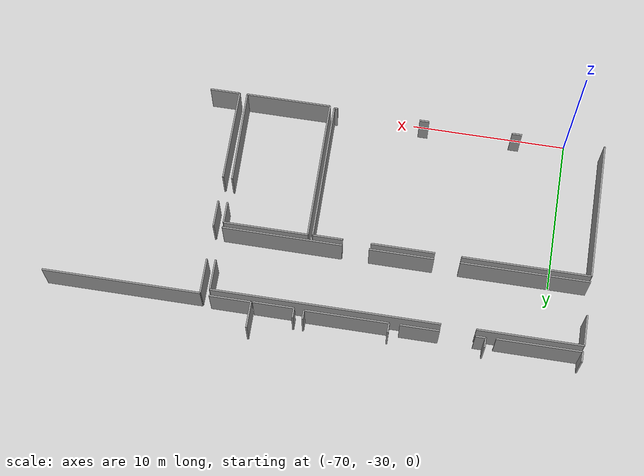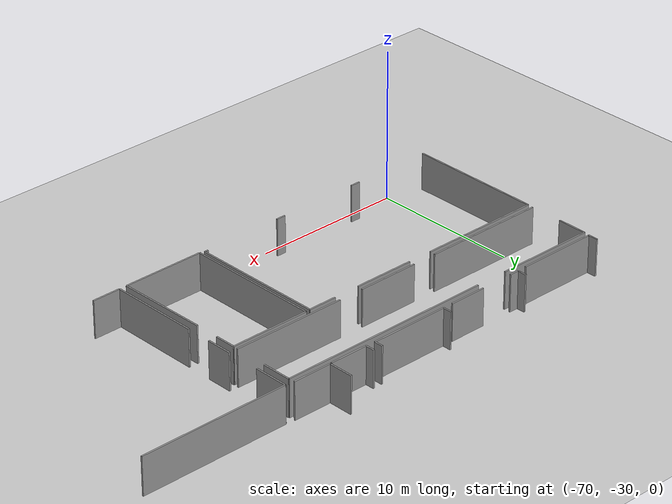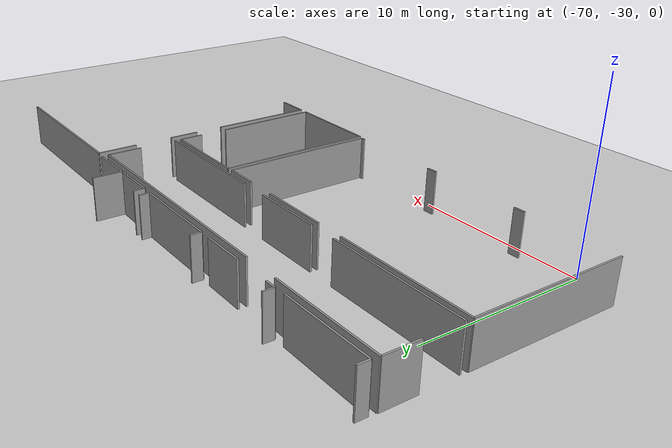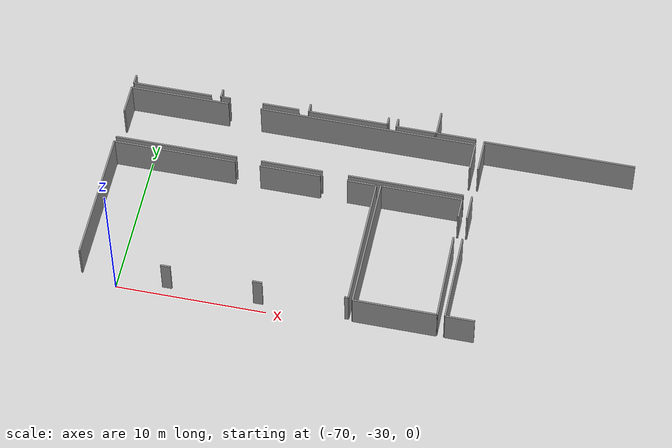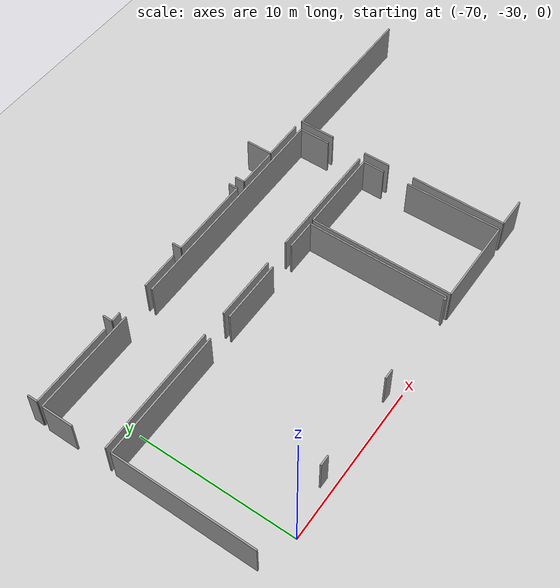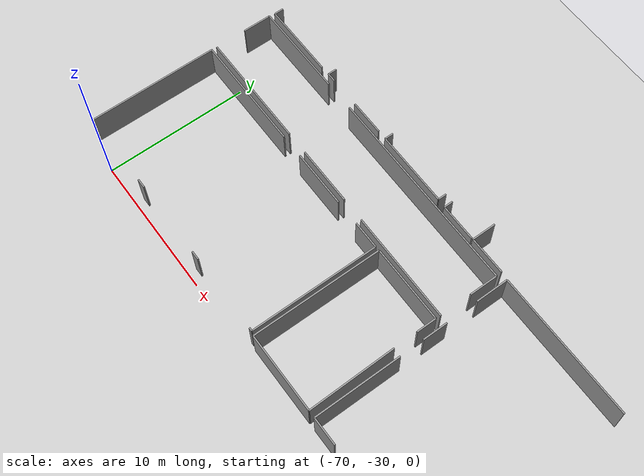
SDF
<sdf version="1.6">
 <world name="default">
  <model name="ground_plane">
   <static>1</static>
   <link name="link">
    <collision name="collision">
     <geometry><plane><normal>0 0 1</normal><size>100 100</size></plane></geometry>
     <surface><friction><ode><mu>100</mu><mu2>50</mu2></ode></friction></surface>
    </collision>
    <visual name="visual">
     <cast_shadows>0</cast_shadows>
     <geometry><plane><normal>0 0 1</normal><size>100 100</size></plane></geometry>
     <material>
      <script><uri>file://media/materials/scripts/gazebo.material</uri><name>Gazebo/Grey</name></script>
     </material>
    </visual>
   </link>
  </model>
  <model name="50010535_PLAN2">
   <static>1</static>
   <link name="Wall_70">
    <collision name="Wall_70_Collision">
     <geometry><box><size>2.60884481236 0.1 2.5</size></box></geometry>
     <pose>1.30442240618 0 1.25 0 0 0</pose>
    </collision>
    <visual name="Wall_70_Visual">
     <pose>1.30442240618 0 1.25 0 0 0</pose>
     <geometry><box><size>2.60884481236 0.1 2.5</size></box></geometry>
     <material>
      <script><uri>file://media/materials/scripts/gazebo.material</uri><name>Gazebo/Grey</name></script>
      <ambient>1 1 1 1</ambient>
     </material>
    </visual>
    <pose>50.8468326525 -45.2247797056 0 0 0 3.14159265359</pose>
   </link>
   <link name="Wall_71">
    <collision name="Wall_71_Collision">
     <geometry><box><size>0.630991785417 0.1 2.5</size></box></geometry>
     <pose>0.315495892709 0 1.25 0 0 0</pose>
    </collision>
    <visual name="Wall_71_Visual">
     <pose>0.315495892709 0 1.25 0 0 0</pose>
     <geometry><box><size>0.630991785417 0.1 2.5</size></box></geometry>
     <material>
      <script><uri>file://media/materials/scripts/gazebo.material</uri><name>Gazebo/Grey</name></script>
      <ambient>1 1 1 1</ambient>
     </material>
    </visual>
    <pose>48.2379878401 -45.2247797056 0 0 0 1.57079632679</pose>
   </link>
   <link name="Wall_73">
    <collision name="Wall_73_Collision">
     <geometry><box><size>0.584741078633 0.1 2.5</size></box></geometry>
     <pose>0.292370539316 0 1.25 0 0 0</pose>
    </collision>
    <visual name="Wall_73_Visual">
     <pose>0.292370539316 0 1.25 0 0 0</pose>
     <geometry><box><size>0.584741078633 0.1 2.5</size></box></geometry>
     <material>
      <script><uri>file://media/materials/scripts/gazebo.material</uri><name>Gazebo/Grey</name></script>
      <ambient>1 1 1 1</ambient>
     </material>
    </visual>
    <pose>47.6057254309 -44.5937879202 0 0 0 -1.57079632679</pose>
   </link>
   <link name="Wall_74">
    <collision name="Wall_74_Collision">
     <geometry><box><size>5.32874214596 0.1 2.5</size></box></geometry>
     <pose>2.66437107298 0 1.25 0 0 0</pose>
    </collision>
    <visual name="Wall_74_Visual">
     <pose>2.66437107298 0 1.25 0 0 0</pose>
     <geometry><box><size>5.32874214596 0.1 2.5</size></box></geometry>
     <material>
      <script><uri>file://media/materials/scripts/gazebo.material</uri><name>Gazebo/Grey</name></script>
      <ambient>1 1 1 1</ambient>
     </material>
    </visual>
    <pose>47.6057254309 -45.1785289988 0 0 0 3.14159265359</pose>
   </link>
   <link name="Wall_75">
    <collision name="Wall_75_Collision">
     <geometry><box><size>0.600750938673 0.1 2.5</size></box></geometry>
     <pose>0.300375469337 0 1.25 0 0 0</pose>
    </collision>
    <visual name="Wall_75_Visual">
     <pose>0.300375469337 0 1.25 0 0 0</pose>
     <geometry><box><size>0.600750938673 0.1 2.5</size></box></geometry>
     <material>
      <script><uri>file://media/materials/scripts/gazebo.material</uri><name>Gazebo/Grey</name></script>
      <ambient>1 1 1 1</ambient>
     </material>
    </visual>
    <pose>42.2769832849 -45.1785289988 0 0 0 1.57079632679</pose>
   </link>
   <link name="Wall_78">
    <collision name="Wall_78_Collision">
     <geometry><box><size>2.4993170397 0.1 2.5</size></box></geometry>
     <pose>1.24965851985 0 1.25 0 0 0</pose>
    </collision>
    <visual name="Wall_78_Visual">
     <pose>1.24965851985 0 1.25 0 0 0</pose>
     <geometry><box><size>2.4993170397 0.1 2.5</size></box></geometry>
     <material>
      <script><uri>file://media/materials/scripts/gazebo.material</uri><name>Gazebo/Grey</name></script>
      <ambient>1 1 1 1</ambient>
     </material>
    </visual>
    <pose>41.6086351594 -45.1734465036 0 0 0 3.14159265359</pose>
   </link>
   <link name="Wall_79">
    <collision name="Wall_79_Collision">
     <geometry><box><size>0.639377902581 0.1 2.5</size></box></geometry>
     <pose>0.319688951291 0 1.25 0 0 0</pose>
    </collision>
    <visual name="Wall_79_Visual">
     <pose>0.319688951291 0 1.25 0 0 0</pose>
     <geometry><box><size>0.639377902581 0.1 2.5</size></box></geometry>
     <material>
      <script><uri>file://media/materials/scripts/gazebo.material</uri><name>Gazebo/Grey</name></script>
      <ambient>1 1 1 1</ambient>
     </material>
    </visual>
    <pose>36.9009739332 -45.1734465036 0 0 0 3.14159265359</pose>
   </link>
   <link name="Wall_80">
    <collision name="Wall_80_Collision">
     <geometry><box><size>0.61040767965 0.1 2.5</size></box></geometry>
     <pose>0.305203839825 0 1.25 0 0 0</pose>
    </collision>
    <visual name="Wall_80_Visual">
     <pose>0.305203839825 0 1.25 0 0 0</pose>
     <geometry><box><size>0.61040767965 0.1 2.5</size></box></geometry>
     <material>
      <script><uri>file://media/materials/scripts/gazebo.material</uri><name>Gazebo/Grey</name></script>
      <ambient>1 1 1 1</ambient>
     </material>
    </visual>
    <pose>36.2615960306 -45.1734465036 0 0 0 1.57079632679</pose>
   </link>
   <link name="Wall_88">
    <collision name="Wall_88_Collision">
     <geometry><box><size>5.34195663361 0.1 2.5</size></box></geometry>
     <pose>2.6709783168 0 1.25 0 0 0</pose>
    </collision>
    <visual name="Wall_88_Visual">
     <pose>2.6709783168 0 1.25 0 0 0</pose>
     <geometry><box><size>5.34195663361 0.1 2.5</size></box></geometry>
     <material>
      <script><uri>file://media/materials/scripts/gazebo.material</uri><name>Gazebo/Grey</name></script>
      <ambient>1 1 1 1</ambient>
     </material>
    </visual>
    <pose>35.6135778861 -45.2095322198 0 0 0 3.14159265359</pose>
   </link>
   <link name="Wall_89">
    <collision name="Wall_89_Collision">
     <geometry><box><size>0.653354764522 0.1 2.5</size></box></geometry>
     <pose>0.326677382261 0 1.25 0 0 0</pose>
    </collision>
    <visual name="Wall_89_Visual">
     <pose>0.326677382261 0 1.25 0 0 0</pose>
     <geometry><box><size>0.653354764522 0.1 2.5</size></box></geometry>
     <material>
      <script><uri>file://media/materials/scripts/gazebo.material</uri><name>Gazebo/Grey</name></script>
      <ambient>1 1 1 1</ambient>
     </material>
    </visual>
    <pose>30.2716212525 -45.2095322198 0 0 0 1.57079632679</pose>
   </link>
   <link name="Wall_729">
    <collision name="Wall_729_Collision">
     <geometry><box><size>1.92169145442 0.1 2.5</size></box></geometry>
     <pose>0.96084572721 0 1.25 0 0 0</pose>
    </collision>
    <visual name="Wall_729_Visual">
     <pose>0.96084572721 0 1.25 0 0 0</pose>
     <geometry><box><size>1.92169145442 0.1 2.5</size></box></geometry>
     <material>
      <script><uri>file://media/materials/scripts/gazebo.material</uri><name>Gazebo/Grey</name></script>
      <ambient>1 1 1 1</ambient>
     </material>
    </visual>
    <pose>56.0973043716 -59.2524665985 0 0 0 3.14159265359</pose>
   </link>
   <link name="Wall_730">
    <collision name="Wall_730_Collision">
     <geometry><box><size>6.02834761726 0.1 2.5</size></box></geometry>
     <pose>3.01417380863 0 1.25 0 0 0</pose>
    </collision>
    <visual name="Wall_730_Visual">
     <pose>3.01417380863 0 1.25 0 0 0</pose>
     <geometry><box><size>6.02834761726 0.1 2.5</size></box></geometry>
     <material>
      <script><uri>file://media/materials/scripts/gazebo.material</uri><name>Gazebo/Grey</name></script>
      <ambient>1 1 1 1</ambient>
     </material>
    </visual>
    <pose>54.1756129172 -59.2524665985 0 0 0 1.57079632679</pose>
   </link>
   <link name="Wall_731">
    <collision name="Wall_731_Collision">
     <geometry><box><size>1.72372826439 0.1 2.5</size></box></geometry>
     <pose>0.861864132196 0 1.25 0 0 0</pose>
    </collision>
    <visual name="Wall_731_Visual">
     <pose>0.861864132196 0 1.25 0 0 0</pose>
     <geometry><box><size>1.72372826439 0.1 2.5</size></box></geometry>
     <material>
      <script><uri>file://media/materials/scripts/gazebo.material</uri><name>Gazebo/Grey</name></script>
      <ambient>1 1 1 1</ambient>
     </material>
    </visual>
    <pose>54.1756129172 -51.5448625503 0 0 0 1.57079632679</pose>
   </link>
   <link name="Wall_732">
    <collision name="Wall_732_Collision">
     <geometry><box><size>2.28076974391 0.1 2.5</size></box></geometry>
     <pose>1.14038487195 0 1.25 0 0 0</pose>
    </collision>
    <visual name="Wall_732_Visual">
     <pose>1.14038487195 0 1.25 0 0 0</pose>
     <geometry><box><size>2.28076974391 0.1 2.5</size></box></geometry>
     <material>
      <script><uri>file://media/materials/scripts/gazebo.material</uri><name>Gazebo/Grey</name></script>
      <ambient>1 1 1 1</ambient>
     </material>
    </visual>
    <pose>54.1756129172 -47.567047642 0 0 0 1.57079632679</pose>
   </link>
   <link name="Wall_733">
    <collision name="Wall_733_Collision">
     <geometry><box><size>10.0689313418 0.1 2.5</size></box></geometry>
     <pose>5.03446567092 0 1.25 0 0 0</pose>
    </collision>
    <visual name="Wall_733_Visual">
     <pose>5.03446567092 0 1.25 0 0 0</pose>
     <geometry><box><size>10.0689313418 0.1 2.5</size></box></geometry>
     <material>
      <script><uri>file://media/materials/scripts/gazebo.material</uri><name>Gazebo/Grey</name></script>
      <ambient>1 1 1 1</ambient>
     </material>
    </visual>
    <pose>54.1756129172 -45.2862778981 0 0 0 0.0</pose>
   </link>
   <link name="Wall_802">
    <collision name="Wall_802_Collision">
     <geometry><box><size>2.65179189723 0.1 2.5</size></box></geometry>
     <pose>1.32589594862 0 1.25 0 0 0</pose>
    </collision>
    <visual name="Wall_802_Visual">
     <pose>1.32589594862 0 1.25 0 0 0</pose>
     <geometry><box><size>2.65179189723 0.1 2.5</size></box></geometry>
     <material>
      <script><uri>file://media/materials/scripts/gazebo.material</uri><name>Gazebo/Grey</name></script>
      <ambient>1 1 1 1</ambient>
     </material>
    </visual>
    <pose>53.5992579557 -45.2095322198 0 0 0 3.14159265359</pose>
   </link>
   <link name="Wall_803">
    <collision name="Wall_803_Collision">
     <geometry><box><size>1.67188681283 0.1 2.5</size></box></geometry>
     <pose>0.835943406415 0 1.25 0 0 0</pose>
    </collision>
    <visual name="Wall_803_Visual">
     <pose>0.835943406415 0 1.25 0 0 0</pose>
     <geometry><box><size>1.67188681283 0.1 2.5</size></box></geometry>
     <material>
      <script><uri>file://media/materials/scripts/gazebo.material</uri><name>Gazebo/Grey</name></script>
      <ambient>1 1 1 1</ambient>
     </material>
    </visual>
    <pose>50.9474660585 -45.2095322198 0 0 0 1.57079632679</pose>
   </link>
   <link name="Wall_833">
    <collision name="Wall_833_Collision">
     <geometry><box><size>1.98852626697 0.1 2.5</size></box></geometry>
     <pose>0.994263133485 0 1.25 0 0 0</pose>
    </collision>
    <visual name="Wall_833_Visual">
     <pose>0.994263133485 0 1.25 0 0 0</pose>
     <geometry><box><size>1.98852626697 0.1 2.5</size></box></geometry>
     <material>
      <script><uri>file://media/materials/scripts/gazebo.material</uri><name>Gazebo/Grey</name></script>
      <ambient>1 1 1 1</ambient>
     </material>
    </visual>
    <pose>53.6183173129 -47.601354485 0 0 0 1.57079632679</pose>
   </link>
   <link name="Wall_834">
    <collision name="Wall_834_Collision">
     <geometry><box><size>14.5267879265 0.1 2.5</size></box></geometry>
     <pose>7.26339396327 0 1.25 0 0 0</pose>
    </collision>
    <visual name="Wall_834_Visual">
     <pose>7.26339396327 0 1.25 0 0 0</pose>
     <geometry><box><size>14.5267879265 0.1 2.5</size></box></geometry>
     <material>
      <script><uri>file://media/materials/scripts/gazebo.material</uri><name>Gazebo/Grey</name></script>
      <ambient>1 1 1 1</ambient>
     </material>
    </visual>
    <pose>53.6183173129 -45.612828218 0 0 0 3.14159265359</pose>
   </link>
   <link name="Wall_835">
    <collision name="Wall_835_Collision">
     <geometry><box><size>6.68144825702 0.1 2.5</size></box></geometry>
     <pose>3.34072412851 0 1.25 0 0 0</pose>
    </collision>
    <visual name="Wall_835_Visual">
     <pose>3.34072412851 0 1.25 0 0 0</pose>
     <geometry><box><size>6.68144825702 0.1 2.5</size></box></geometry>
     <material>
      <script><uri>file://media/materials/scripts/gazebo.material</uri><name>Gazebo/Grey</name></script>
      <ambient>1 1 1 1</ambient>
     </material>
    </visual>
    <pose>36.8951290636 -45.612828218 0 0 0 3.14159265359</pose>
   </link>
   <link name="Wall_836">
    <collision name="Wall_836_Collision">
     <geometry><box><size>1.99208401365 0.1 2.5</size></box></geometry>
     <pose>0.996042006823 0 1.25 0 0 0</pose>
    </collision>
    <visual name="Wall_836_Visual">
     <pose>0.996042006823 0 1.25 0 0 0</pose>
     <geometry><box><size>1.99208401365 0.1 2.5</size></box></geometry>
     <material>
      <script><uri>file://media/materials/scripts/gazebo.material</uri><name>Gazebo/Grey</name></script>
      <ambient>1 1 1 1</ambient>
     </material>
    </visual>
    <pose>30.2136808066 -45.612828218 0 0 0 -1.57079632679</pose>
   </link>
   <link name="Wall_837">
    <collision name="Wall_837_Collision">
     <geometry><box><size>8.21890307046 0.1 2.5</size></box></geometry>
     <pose>4.10945153523 0 1.25 0 0 0</pose>
    </collision>
    <visual name="Wall_837_Visual">
     <pose>4.10945153523 0 1.25 0 0 0</pose>
     <geometry><box><size>8.21890307046 0.1 2.5</size></box></geometry>
     <material>
      <script><uri>file://media/materials/scripts/gazebo.material</uri><name>Gazebo/Grey</name></script>
      <ambient>1 1 1 1</ambient>
     </material>
    </visual>
    <pose>30.2136808066 -49.8023290534 0 0 0 0.0</pose>
   </link>
   <link name="Wall_838">
    <collision name="Wall_838_Collision">
     <geometry><box><size>4.13283101339 0.1 2.5</size></box></geometry>
     <pose>2.06641550669 0 1.25 0 0 0</pose>
    </collision>
    <visual name="Wall_838_Visual">
     <pose>2.06641550669 0 1.25 0 0 0</pose>
     <geometry><box><size>4.13283101339 0.1 2.5</size></box></geometry>
     <material>
      <script><uri>file://media/materials/scripts/gazebo.material</uri><name>Gazebo/Grey</name></script>
      <ambient>1 1 1 1</ambient>
     </material>
    </visual>
    <pose>40.076516966 -49.8023290534 0 0 0 0.0</pose>
   </link>
   <link name="Wall_839">
    <collision name="Wall_839_Collision">
     <geometry><box><size>7.70025739279 0.1 2.5</size></box></geometry>
     <pose>3.85012869639 0 1.25 0 0 0</pose>
    </collision>
    <visual name="Wall_839_Visual">
     <pose>3.85012869639 0 1.25 0 0 0</pose>
     <geometry><box><size>7.70025739279 0.1 2.5</size></box></geometry>
     <material>
      <script><uri>file://media/materials/scripts/gazebo.material</uri><name>Gazebo/Grey</name></script>
      <ambient>1 1 1 1</ambient>
     </material>
    </visual>
    <pose>45.9180828828 -49.8023290534 0 0 0 -0.00244215876982</pose>
   </link>
   <link name="Wall_840">
    <collision name="Wall_840_Collision">
     <geometry><box><size>5.48706187303 0.1 2.5</size></box></geometry>
     <pose>2.74353093651 0 1.25 0 0 0</pose>
    </collision>
    <visual name="Wall_840_Visual">
     <pose>2.74353093651 0 1.25 0 0 0</pose>
     <geometry><box><size>5.48706187303 0.1 2.5</size></box></geometry>
     <material>
      <script><uri>file://media/materials/scripts/gazebo.material</uri><name>Gazebo/Grey</name></script>
      <ambient>1 1 1 1</ambient>
     </material>
    </visual>
    <pose>53.6676175168 -59.2524665985 0 0 0 3.14159265359</pose>
   </link>
   <link name="Wall_841">
    <collision name="Wall_841_Collision">
     <geometry><box><size>9.08978863173 0.1 2.5</size></box></geometry>
     <pose>4.54489431586 0 1.25 0 0 0</pose>
    </collision>
    <visual name="Wall_841_Visual">
     <pose>4.54489431586 0 1.25 0 0 0</pose>
     <geometry><box><size>9.08978863173 0.1 2.5</size></box></geometry>
     <material>
      <script><uri>file://media/materials/scripts/gazebo.material</uri><name>Gazebo/Grey</name></script>
      <ambient>1 1 1 1</ambient>
     </material>
    </visual>
    <pose>48.1805556438 -59.2524665985 0 0 0 1.57079632679</pose>
   </link>
   <link name="Wall_842">
    <collision name="Wall_842_Collision">
     <geometry><box><size>5.4024383271 0.1 2.5</size></box></geometry>
     <pose>2.70121916355 0 1.25 0 0 0</pose>
    </collision>
    <visual name="Wall_842_Visual">
     <pose>2.70121916355 0 1.25 0 0 0</pose>
     <geometry><box><size>5.4024383271 0.1 2.5</size></box></geometry>
     <material>
      <script><uri>file://media/materials/scripts/gazebo.material</uri><name>Gazebo/Grey</name></script>
      <ambient>1 1 1 1</ambient>
     </material>
    </visual>
    <pose>48.1805556438 -50.1626779667 0 0 0 0.0</pose>
   </link>
   <link name="Wall_843">
    <collision name="Wall_843_Collision">
     <geometry><box><size>1.38599645496 0.1 2.5</size></box></geometry>
     <pose>0.69299822748 0 1.25 0 0 0</pose>
    </collision>
    <visual name="Wall_843_Visual">
     <pose>0.69299822748 0 1.25 0 0 0</pose>
     <geometry><box><size>1.38599645496 0.1 2.5</size></box></geometry>
     <material>
      <script><uri>file://media/materials/scripts/gazebo.material</uri><name>Gazebo/Grey</name></script>
      <ambient>1 1 1 1</ambient>
     </material>
    </visual>
    <pose>53.5829939709 -50.1626779667 0 0 0 -1.57079632679</pose>
   </link>
   <link name="Wall_844">
    <collision name="Wall_844_Collision">
     <geometry><box><size>6.05003182852 0.1 2.5</size></box></geometry>
     <pose>3.02501591426 0 1.25 0 0 0</pose>
    </collision>
    <visual name="Wall_844_Visual">
     <pose>3.02501591426 0 1.25 0 0 0</pose>
     <geometry><box><size>6.05003182852 0.1 2.5</size></box></geometry>
     <material>
      <script><uri>file://media/materials/scripts/gazebo.material</uri><name>Gazebo/Grey</name></script>
      <ambient>1 1 1 1</ambient>
     </material>
    </visual>
    <pose>53.5829939709 -53.2030266259 0 0 0 -1.55680858129</pose>
   </link>
   <link name="Wall_845">
    <collision name="Wall_845_Collision">
     <geometry><box><size>0.240147900612 0.1 2.5</size></box></geometry>
     <pose>0.120073950306 0 1.25 0 0 0</pose>
    </collision>
    <visual name="Wall_845_Visual">
     <pose>0.120073950306 0 1.25 0 0 0</pose>
     <geometry><box><size>0.240147900612 0.1 2.5</size></box></geometry>
     <material>
      <script><uri>file://media/materials/scripts/gazebo.material</uri><name>Gazebo/Grey</name></script>
      <ambient>1 1 1 1</ambient>
     </material>
    </visual>
    <pose>47.8847544202 -59.145988323 0 0 0 3.14159265359</pose>
   </link>
   <link name="Wall_846">
    <collision name="Wall_846_Collision">
     <geometry><box><size>0.630483535892 0.1 2.5</size></box></geometry>
     <pose>0.315241767946 0 1.25 0 0 0</pose>
    </collision>
    <visual name="Wall_846_Visual">
     <pose>0.315241767946 0 1.25 0 0 0</pose>
     <geometry><box><size>0.630483535892 0.1 2.5</size></box></geometry>
     <material>
      <script><uri>file://media/materials/scripts/gazebo.material</uri><name>Gazebo/Grey</name></script>
      <ambient>1 1 1 1</ambient>
     </material>
    </visual>
    <pose>42.2604651754 -59.145988323 0 0 0 3.14159265359</pose>
   </link>
   <link name="Wall_847">
    <collision name="Wall_847_Collision">
     <geometry><box><size>0.649542893083 0.1 2.5</size></box></geometry>
     <pose>0.324771446542 0 1.25 0 0 0</pose>
    </collision>
    <visual name="Wall_847_Visual">
     <pose>0.324771446542 0 1.25 0 0 0</pose>
     <geometry><box><size>0.649542893083 0.1 2.5</size></box></geometry>
     <material>
      <script><uri>file://media/materials/scripts/gazebo.material</uri><name>Gazebo/Grey</name></script>
      <ambient>1 1 1 1</ambient>
     </material>
    </visual>
    <pose>36.2227149419 -59.145988323 0 0 0 3.14159265359</pose>
   </link>
   <link name="Wall_848">
    <collision name="Wall_848_Collision">
     <geometry><box><size>8.9596767533 0.1 2.5</size></box></geometry>
     <pose>4.47983837665 0 1.25 0 0 0</pose>
    </collision>
    <visual name="Wall_848_Visual">
     <pose>4.47983837665 0 1.25 0 0 0</pose>
     <geometry><box><size>8.9596767533 0.1 2.5</size></box></geometry>
     <material>
      <script><uri>file://media/materials/scripts/gazebo.material</uri><name>Gazebo/Grey</name></script>
      <ambient>1 1 1 1</ambient>
     </material>
    </visual>
    <pose>30.1943673246 -59.145988323 0 0 0 1.57079632679</pose>
   </link>
   <link name="Wall_849">
    <collision name="Wall_849_Collision">
     <geometry><box><size>8.20111433708 0.1 2.5</size></box></geometry>
     <pose>4.10055716854 0 1.25 0 0 0</pose>
    </collision>
    <visual name="Wall_849_Visual">
     <pose>4.10055716854 0 1.25 0 0 0</pose>
     <geometry><box><size>8.20111433708 0.1 2.5</size></box></geometry>
     <material>
      <script><uri>file://media/materials/scripts/gazebo.material</uri><name>Gazebo/Grey</name></script>
      <ambient>1 1 1 1</ambient>
     </material>
    </visual>
    <pose>30.1943673246 -50.1863115697 0 0 0 0.0</pose>
   </link>
   <link name="Wall_850">
    <collision name="Wall_850_Collision">
     <geometry><box><size>4.07616119134 0.1 2.5</size></box></geometry>
     <pose>2.03808059567 0 1.25 0 0 0</pose>
    </collision>
    <visual name="Wall_850_Visual">
     <pose>2.03808059567 0 1.25 0 0 0</pose>
     <geometry><box><size>4.07616119134 0.1 2.5</size></box></geometry>
     <material>
      <script><uri>file://media/materials/scripts/gazebo.material</uri><name>Gazebo/Grey</name></script>
      <ambient>1 1 1 1</ambient>
     </material>
    </visual>
    <pose>40.0694014727 -50.1863115697 0 0 0 0.0</pose>
   </link>
   <link name="Wall_851">
    <collision name="Wall_851_Collision">
     <geometry><box><size>1.9333811935 0.1 2.5</size></box></geometry>
     <pose>0.966690596748 0 1.25 0 0 0</pose>
    </collision>
    <visual name="Wall_851_Visual">
     <pose>0.966690596748 0 1.25 0 0 0</pose>
     <geometry><box><size>1.9333811935 0.1 2.5</size></box></geometry>
     <material>
      <script><uri>file://media/materials/scripts/gazebo.material</uri><name>Gazebo/Grey</name></script>
      <ambient>1 1 1 1</ambient>
     </material>
    </visual>
    <pose>45.9363798657 -50.1863115697 0 0 0 0.0</pose>
   </link>
   <link name="Wall_852">
    <collision name="Wall_852_Collision">
     <geometry><box><size>8.95968929844 0.1 2.5</size></box></geometry>
     <pose>4.47984464922 0 1.25 0 0 0</pose>
    </collision>
    <visual name="Wall_852_Visual">
     <pose>4.47984464922 0 1.25 0 0 0</pose>
     <geometry><box><size>8.95968929844 0.1 2.5</size></box></geometry>
     <material>
      <script><uri>file://media/materials/scripts/gazebo.material</uri><name>Gazebo/Grey</name></script>
      <ambient>1 1 1 1</ambient>
     </material>
    </visual>
    <pose>47.8697610592 -50.1863115697 0 0 0 -1.5691229018</pose>
   </link>
   <pose>-102.6 29.7873404573 0 0 0 0</pose>
  </model>
 </world>
</sdf>
